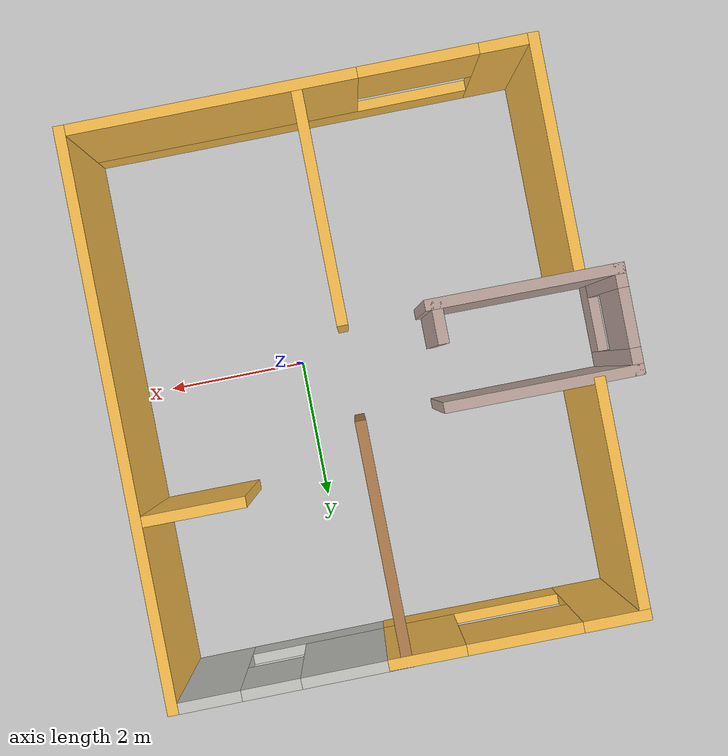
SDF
<sdf version="1.7">
 <world name="default">
  <scene><ambient>0.4 0.4 0.4 1</ambient><background>0.7 0.7 0.7 1</background><shadows>1</shadows></scene>
  <light name="sun" type="directional">
   <pose>0 0 10 0 -0 0</pose>
   <diffuse>0.8 0.8 0.8 1</diffuse>
   <specular>0.2 0.2 0.2 1</specular>
   <attenuation>
    <range>1000</range>
    <constant>0.9</constant>
    <linear>0.01</linear>
    <quadratic>0.001</quadratic>
   </attenuation>
   <direction>-0.5 0.1 -0.9</direction>
   <spot><inner_angle>0</inner_angle><outer_angle>0</outer_angle><falloff>0</falloff></spot>
  </light>
  <model name="ground_plane">
   <static>1</static>
   <link name="link">
    <collision name="collision">
     <geometry><plane><normal>0 0 1</normal><size>100 100</size></plane></geometry>
     <surface>
      <contact><collide_bitmask>65535</collide_bitmask></contact>
      <friction><ode><mu>100</mu><mu2>50</mu2></ode></friction>
     </surface>
    </collision>
    <visual name="visual">
     <cast_shadows>0</cast_shadows>
     <geometry><plane><normal>0 0 1</normal><size>100 100</size></plane></geometry>
     <material>
      <script><uri>file://media/materials/scripts/gazebo.material</uri><name>Gazebo/Grey</name></script>
     </material>
    </visual>
   </link>
  </model>
  <physics type="ode">
   <real_time_update_rate>1000</real_time_update_rate>
   <max_step_size>0.001</max_step_size>
   <real_time_factor>1</real_time_factor>
   <ode>
    <solver>
     <type>quick</type>
     <iters>150</iters>
     <precon_iters>0</precon_iters>
     <sor>1.4</sor>
     <use_dynamic_moi_rescaling>1</use_dynamic_moi_rescaling>
    </solver>
    <constraints>
     <cfm>1e-05</cfm>
     <erp>0.2</erp>
     <contact_max_correcting_vel>2000</contact_max_correcting_vel>
     <contact_surface_layer>0.01</contact_surface_layer>
    </constraints>
   </ode>
  </physics>
  <gravity>0 0 -9.8</gravity>
  <magnetic_field>6e-06 2.3e-05 -4.2e-05</magnetic_field>
  <atmosphere type="adiabatic"/>
  <spherical_coordinates>
   <surface_model>EARTH_WGS84</surface_model>
   <latitude_deg>0</latitude_deg>
   <longitude_deg>0</longitude_deg>
   <elevation>0</elevation>
   <heading_deg>0</heading_deg>
  </spherical_coordinates>
  <model name="a6">
   <pose>-0.974456 0.295149 0 0 -0 0</pose>
   <link name="Wall_0">
    <pose>-1.21502 3.82657 0 0 -0 0</pose>
    <visual name="Wall_0_Visual_0">
     <pose>-1.29954 0 1.25 0 -0 0</pose>
     <geometry><box><size>0.90091 0.15 2.5</size></box></geometry>
     <material>
      <script><uri>file://media/materials/scripts/gazebo.material</uri><name>Gazebo/Grey</name></script>
      <ambient>1 0.764706 0.305882 1</ambient>
     </material>
     <meta><layer>0</layer></meta>
    </visual>
    <collision name="Wall_0_Collision_0">
     <geometry><box><size>0.90091 0.15 2.5</size></box></geometry>
     <pose>-1.29954 0 1.25 0 -0 0</pose>
    </collision>
    <visual name="Wall_0_Visual_1">
     <pose>0.450455 0 0.25 0 -0 0</pose>
     <geometry><box><size>2.59909 0.15 0.5</size></box></geometry>
     <material>
      <script><uri>file://media/materials/scripts/gazebo.material</uri><name>Gazebo/Grey</name></script>
      <ambient>1 0.764706 0.305882 1</ambient>
     </material>
     <meta><layer>0</layer></meta>
    </visual>
    <collision name="Wall_0_Collision_1">
     <geometry><box><size>2.59909 0.15 0.5</size></box></geometry>
     <pose>0.450455 0 0.25 0 -0 0</pose>
    </collision>
    <visual name="Wall_0_Visual_2">
     <pose>1.22649 0 1.5 0 -0 0</pose>
     <geometry><box><size>1.04702 0.15 2</size></box></geometry>
     <material>
      <script><uri>file://media/materials/scripts/gazebo.material</uri><name>Gazebo/Grey</name></script>
      <ambient>1 0.764706 0.305882 1</ambient>
     </material>
     <meta><layer>0</layer></meta>
    </visual>
    <collision name="Wall_0_Collision_2">
     <geometry><box><size>1.04702 0.15 2</size></box></geometry>
     <pose>1.22649 0 1.5 0 -0 0</pose>
    </collision>
    <visual name="Wall_0_Visual_3">
     <pose>-0.073053 0 1.9 0 -0 0</pose>
     <geometry><box><size>1.55207 0.15 1.2</size></box></geometry>
     <material>
      <script><uri>file://media/materials/scripts/gazebo.material</uri><name>Gazebo/Grey</name></script>
      <ambient>1 0.764706 0.305882 1</ambient>
     </material>
     <meta><layer>0</layer></meta>
    </visual>
    <collision name="Wall_0_Collision_3">
     <geometry><box><size>1.55207 0.15 1.2</size></box></geometry>
     <pose>-0.073053 0 1.9 0 -0 0</pose>
    </collision>
   </link>
   <link name="Wall_11">
    <collision name="Wall_11_Collision">
     <geometry><box><size>7.84483 0.15 2.5</size></box></geometry>
     <pose>0 0 1.25 0 -0 0</pose>
    </collision>
    <visual name="Wall_11_Visual">
     <pose>0 0 1.25 0 -0 0</pose>
     <geometry><box><size>7.84483 0.15 2.5</size></box></geometry>
     <material>
      <script><uri>file://media/materials/scripts/gazebo.material</uri><name>Gazebo/Grey</name></script>
      <ambient>1 0.764706 0.305882 1</ambient>
     </material>
     <meta><layer>0</layer></meta>
    </visual>
    <pose>3.41868 0.005694 0 0 -0 -1.5708</pose>
   </link>
   <link name="Wall_13">
    <pose>-3.41902 -0.009206 0 0 -0 -1.5708</pose>
    <visual name="Wall_13_Visual_0">
     <pose>-0.565125 0 1.25 0 -0 0</pose>
     <geometry><box><size>0.369749 0.15 2.5</size></box></geometry>
     <material>
      <script><uri>file://media/materials/scripts/gazebo.material</uri><name>Gazebo/Grey</name></script>
      <ambient>0.760784 0.662745 0.627451 1</ambient>
     </material>
     <meta><layer>0</layer></meta>
    </visual>
    <collision name="Wall_13_Collision_0">
     <geometry><box><size>0.369749 0.15 2.5</size></box></geometry>
     <pose>-0.565125 0 1.25 0 -0 0</pose>
    </collision>
    <visual name="Wall_13_Visual_1">
     <pose>0.184875 0 0.25 0 -0 0</pose>
     <geometry><box><size>1.13025 0.15 0.5</size></box></geometry>
     <material>
      <script><uri>file://media/materials/scripts/gazebo.material</uri><name>Gazebo/Grey</name></script>
      <ambient>0.760784 0.662745 0.627451 1</ambient>
     </material>
     <meta><layer>0</layer></meta>
    </visual>
    <collision name="Wall_13_Collision_1">
     <geometry><box><size>1.13025 0.15 0.5</size></box></geometry>
     <pose>0.184875 0 0.25 0 -0 0</pose>
    </collision>
    <visual name="Wall_13_Visual_2">
     <pose>0.584875 0 1.5 0 -0 0</pose>
     <geometry><box><size>0.330251 0.15 2</size></box></geometry>
     <material>
      <script><uri>file://media/materials/scripts/gazebo.material</uri><name>Gazebo/Grey</name></script>
      <ambient>0.760784 0.662745 0.627451 1</ambient>
     </material>
     <meta><layer>0</layer></meta>
    </visual>
    <collision name="Wall_13_Collision_2">
     <geometry><box><size>0.330251 0.15 2</size></box></geometry>
     <pose>0.584875 0 1.5 0 -0 0</pose>
    </collision>
    <visual name="Wall_13_Visual_3">
     <pose>0.019749 0 1.9 0 -0 0</pose>
     <geometry><box><size>0.8 0.15 1.2</size></box></geometry>
     <material>
      <script><uri>file://media/materials/scripts/gazebo.material</uri><name>Gazebo/Grey</name></script>
      <ambient>0.760784 0.662745 0.627451 1</ambient>
     </material>
     <meta><layer>0</layer></meta>
    </visual>
    <collision name="Wall_13_Collision_3">
     <geometry><box><size>0.8 0.15 1.2</size></box></geometry>
     <pose>0.019749 0 1.9 0 -0 0</pose>
    </collision>
   </link>
   <link name="Wall_14">
    <collision name="Wall_14_Collision">
     <geometry><box><size>2.66664 0.15 2.5</size></box></geometry>
     <pose>0 0 1.25 0 -0 0</pose>
    </collision>
    <visual name="Wall_14_Visual">
     <pose>0 0 1.25 0 -0 0</pose>
     <geometry><box><size>2.66664 0.15 2.5</size></box></geometry>
     <material>
      <script><uri>file://media/materials/scripts/gazebo.material</uri><name>Gazebo/Grey</name></script>
      <ambient>0.760784 0.662745 0.627451 1</ambient>
     </material>
     <meta><layer>0</layer></meta>
    </visual>
    <pose>-2.16071 -0.688255 0 0 -0 -0.003218</pose>
   </link>
   <link name="Wall_16">
    <collision name="Wall_16_Collision">
     <geometry><box><size>0.573407 0.15 2.5</size></box></geometry>
     <pose>0 0 1.25 0 -0 0</pose>
    </collision>
    <visual name="Wall_16_Visual">
     <pose>0 0 1.25 0 -0 0</pose>
     <geometry><box><size>0.573407 0.15 2.5</size></box></geometry>
     <material>
      <script><uri>file://media/materials/scripts/gazebo.material</uri><name>Gazebo/Grey</name></script>
      <ambient>0.760784 0.662745 0.627451 1</ambient>
     </material>
     <meta><layer>0</layer></meta>
    </visual>
    <pose>-0.981322 -0.440806 0 0 -0 -1.5708</pose>
   </link>
   <link name="Wall_18">
    <collision name="Wall_18_Collision">
     <geometry><box><size>3.29758 0.15 2.5</size></box></geometry>
     <pose>0 0 1.25 0 -0 0</pose>
    </collision>
    <visual name="Wall_18_Visual">
     <pose>0 0 1.25 0 -0 0</pose>
     <geometry><box><size>3.29758 0.15 2.5</size></box></geometry>
     <material>
      <script><uri>file://media/materials/scripts/gazebo.material</uri><name>Gazebo/Grey</name></script>
      <ambient>1 0.764706 0.305882 1</ambient>
     </material>
     <meta><layer>0</layer></meta>
    </visual>
    <pose>-2.89937 -2.2793 0 0 -0 -1.5708</pose>
   </link>
   <link name="Wall_2">
    <collision name="Wall_2_Collision">
     <geometry><box><size>3.25 0.15 2.5</size></box></geometry>
     <pose>0 0 1.25 0 -0 0</pose>
    </collision>
    <visual name="Wall_2_Visual">
     <pose>0 0 1.25 0 -0 0</pose>
     <geometry><box><size>3.25 0.15 2.5</size></box></geometry>
     <material>
      <script><uri>file://media/materials/scripts/gazebo.material</uri><name>Gazebo/Grey</name></script>
      <ambient>1 0.764706 0.305882 1</ambient>
     </material>
     <meta><layer>0</layer></meta>
    </visual>
    <pose>-2.89002 2.27657 0 0 -0 -1.5708</pose>
   </link>
   <link name="Wall_21">
    <pose>0.259656 -3.84719 0 0 -0 0.001863</pose>
    <visual name="Wall_21_Visual_0">
     <pose>-2.83157 0 1.25 0 -0 0</pose>
     <geometry><box><size>0.80491 0.15 2.5</size></box></geometry>
     <material>
      <script><uri>file://media/materials/scripts/gazebo.material</uri><name>Gazebo/Grey</name></script>
      <ambient>1 0.764706 0.305882 1</ambient>
     </material>
     <meta><layer>0</layer></meta>
    </visual>
    <collision name="Wall_21_Collision_0">
     <geometry><box><size>0.80491 0.15 2.5</size></box></geometry>
     <pose>-2.83157 0 1.25 0 -0 0</pose>
    </collision>
    <visual name="Wall_21_Visual_1">
     <pose>0.402455 0 0.25 0 -0 0</pose>
     <geometry><box><size>5.66315 0.15 0.5</size></box></geometry>
     <material>
      <script><uri>file://media/materials/scripts/gazebo.material</uri><name>Gazebo/Grey</name></script>
      <ambient>1 0.764706 0.305882 1</ambient>
     </material>
     <meta><layer>0</layer></meta>
    </visual>
    <collision name="Wall_21_Collision_1">
     <geometry><box><size>5.66315 0.15 0.5</size></box></geometry>
     <pose>0.402455 0 0.25 0 -0 0</pose>
    </collision>
    <visual name="Wall_21_Visual_2">
     <pose>1.21358 0 1.5 0 -0 0</pose>
     <geometry><box><size>4.04089 0.15 2</size></box></geometry>
     <material>
      <script><uri>file://media/materials/scripts/gazebo.material</uri><name>Gazebo/Grey</name></script>
      <ambient>1 0.764706 0.305882 1</ambient>
     </material>
     <meta><layer>0</layer></meta>
    </visual>
    <collision name="Wall_21_Collision_2">
     <geometry><box><size>4.04089 0.15 2</size></box></geometry>
     <pose>1.21358 0 1.5 0 -0 0</pose>
    </collision>
    <visual name="Wall_21_Visual_3">
     <pose>-1.61799 0 1.9 0 -0 0</pose>
     <geometry><box><size>1.62226 0.15 1.2</size></box></geometry>
     <material>
      <script><uri>file://media/materials/scripts/gazebo.material</uri><name>Gazebo/Grey</name></script>
      <ambient>1 0.764706 0.305882 1</ambient>
     </material>
     <meta><layer>0</layer></meta>
    </visual>
    <collision name="Wall_21_Collision_3">
     <geometry><box><size>1.62226 0.15 1.2</size></box></geometry>
     <pose>-1.61799 0 1.9 0 -0 0</pose>
    </collision>
   </link>
   <link name="Wall_23">
    <collision name="Wall_23_Collision">
     <geometry><box><size>3.25 0.15 2.5</size></box></geometry>
     <pose>0 0 1.25 0 -0 0</pose>
    </collision>
    <visual name="Wall_23_Visual">
     <pose>0 0 1.25 0 -0 0</pose>
     <geometry><box><size>3.25 0.15 2.5</size></box></geometry>
     <material>
      <script><uri>file://media/materials/scripts/gazebo.material</uri><name>Gazebo/Grey</name></script>
      <ambient>1 0.764706 0.305882 1</ambient>
     </material>
     <meta><layer>0</layer></meta>
    </visual>
    <pose>0.274634 -2.26875 0 0 -0 -1.5708</pose>
   </link>
   <link name="Wall_25">
    <pose>1.84666 3.84167 0 0 -0 -3.13458</pose>
    <visual name="Wall_25_Visual_0">
     <pose>-1.14828 0 1.25 0 -0 0</pose>
     <geometry><box><size>0.997691 0.15 2.5</size></box></geometry>
     <material>
      <script><uri>file://media/materials/scripts/gazebo.material</uri><name>Gazebo/CeilingTiled</name></script>
      <ambient>1 1 1 1</ambient>
     </material>
     <meta><layer>0</layer></meta>
    </visual>
    <collision name="Wall_25_Collision_0">
     <geometry><box><size>0.997691 0.15 2.5</size></box></geometry>
     <pose>-1.14828 0 1.25 0 -0 0</pose>
    </collision>
    <visual name="Wall_25_Visual_1">
     <pose>0.498846 0 0.25 0 -0 0</pose>
     <geometry><box><size>2.29655 0.15 0.5</size></box></geometry>
     <material>
      <script><uri>file://media/materials/scripts/gazebo.material</uri><name>Gazebo/CeilingTiled</name></script>
      <ambient>1 1 1 1</ambient>
     </material>
     <meta><layer>0</layer></meta>
    </visual>
    <collision name="Wall_25_Collision_1">
     <geometry><box><size>2.29655 0.15 0.5</size></box></geometry>
     <pose>0.498846 0 0.25 0 -0 0</pose>
    </collision>
    <visual name="Wall_25_Visual_2">
     <pose>0.898846 0 1.5 0 -0 0</pose>
     <geometry><box><size>1.49655 0.15 2</size></box></geometry>
     <material>
      <script><uri>file://media/materials/scripts/gazebo.material</uri><name>Gazebo/CeilingTiled</name></script>
      <ambient>1 1 1 1</ambient>
     </material>
     <meta><layer>0</layer></meta>
    </visual>
    <collision name="Wall_25_Collision_2">
     <geometry><box><size>1.49655 0.15 2</size></box></geometry>
     <pose>0.898846 0 1.5 0 -0 0</pose>
    </collision>
    <visual name="Wall_25_Visual_3">
     <pose>-0.24943 0 1.9 0 -0 0</pose>
     <geometry><box><size>0.8 0.15 1.2</size></box></geometry>
     <material>
      <script><uri>file://media/materials/scripts/gazebo.material</uri><name>Gazebo/CeilingTiled</name></script>
      <ambient>1 1 1 1</ambient>
     </material>
     <meta><layer>0</layer></meta>
    </visual>
    <collision name="Wall_25_Collision_3">
     <geometry><box><size>0.8 0.15 1.2</size></box></geometry>
     <pose>-0.24943 0 1.9 0 -0 0</pose>
    </collision>
   </link>
   <link name="Wall_27">
    <collision name="Wall_27_Collision">
     <geometry><box><size>1.5 0.15 2.5</size></box></geometry>
     <pose>0 0 1.25 0 -0 0</pose>
    </collision>
    <visual name="Wall_27_Visual">
     <pose>0 0 1.25 0 -0 0</pose>
     <geometry><box><size>1.5 0.15 2.5</size></box></geometry>
     <material>
      <script><uri>file://media/materials/scripts/gazebo.material</uri><name>Gazebo/Grey</name></script>
      <ambient>1 0.764706 0.305882 1</ambient>
     </material>
     <meta><layer>0</layer></meta>
    </visual>
    <pose>2.70129 1.37025 0 0 -0 0</pose>
   </link>
   <link name="Wall_4">
    <collision name="Wall_4_Collision">
     <geometry><box><size>2.67601 0.15 2.5</size></box></geometry>
     <pose>0 0 1.25 0 -0 0</pose>
    </collision>
    <visual name="Wall_4_Visual">
     <pose>0 0 1.25 0 -0 0</pose>
     <geometry><box><size>2.67601 0.15 2.5</size></box></geometry>
     <material>
      <script><uri>file://media/materials/scripts/gazebo.material</uri><name>Gazebo/Grey</name></script>
      <ambient>0.760784 0.662745 0.627451 1</ambient>
     </material>
     <meta><layer>0</layer></meta>
    </visual>
    <pose>-2.15603 0.665794 0 0 -0 3.14159</pose>
   </link>
   <link name="Wall_8">
    <collision name="Wall_8_Collision">
     <geometry><box><size>3.25 0.15 2.5</size></box></geometry>
     <pose>0 0 1.25 0 -0 0</pose>
    </collision>
    <visual name="Wall_8_Visual">
     <pose>0 0 1.25 0 -0 0</pose>
     <geometry><box><size>3.25 0.15 2.5</size></box></geometry>
     <material>
      <script><uri>file://media/materials/scripts/gazebo.material</uri><name>Gazebo/Wood</name></script>
      <ambient>1 1 1 1</ambient>
     </material>
     <meta><layer>0</layer></meta>
    </visual>
    <pose>0.283978 2.24224 0 0 -0 1.5708</pose>
   </link>
   <static>1</static>
  </model>
 </world>
</sdf>
